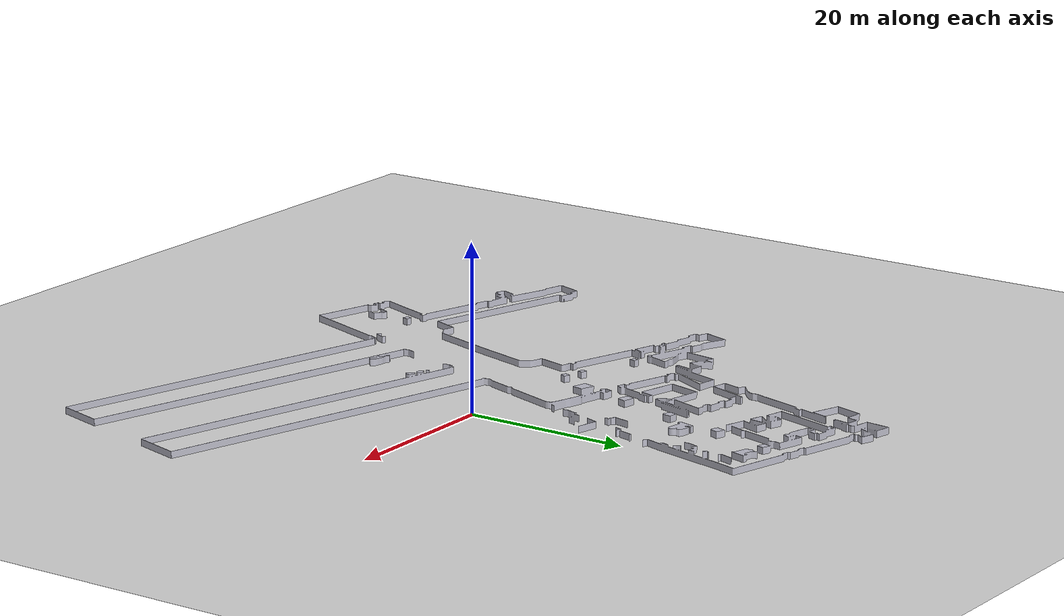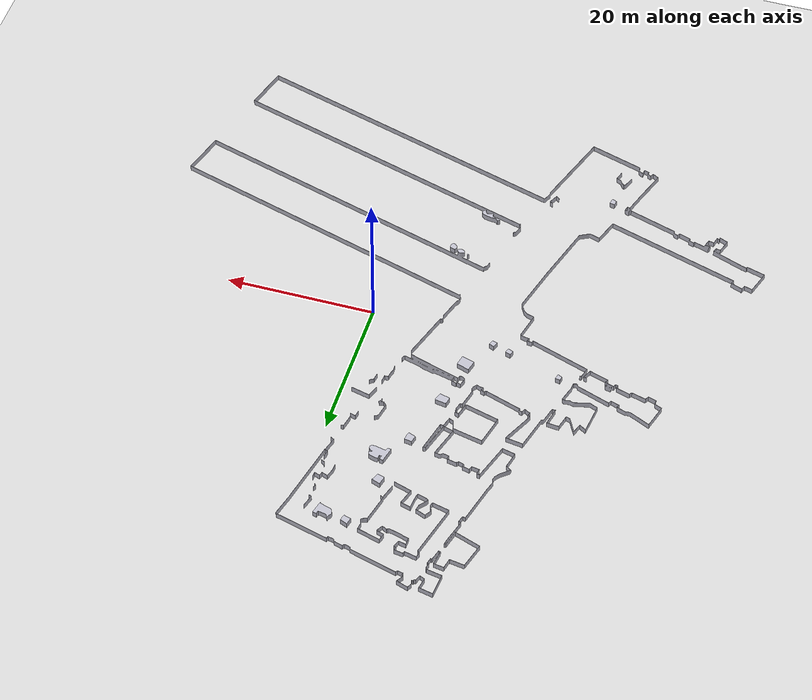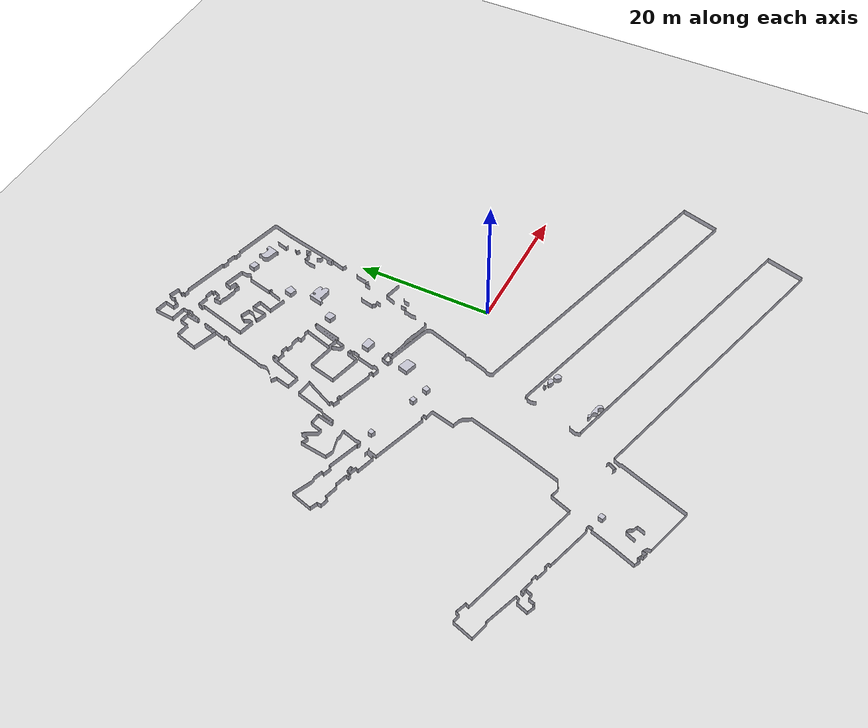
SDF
<?xml version="1.0" ?>
<sdf version="1.6">
  <world name="map_a2_world">
    <physics name="1ms" type="ignored">
      <max_step_size>0.001</max_step_size>
      <real_time_factor>1.0</real_time_factor>
    </physics>

    <!-- Gazebo Sim World Plugins -->
    <plugin filename="gz-sim-physics-system" name="gz::sim::systems::Physics"/>
    <plugin filename="gz-sim-user-commands-system" name="gz::sim::systems::UserCommands"/>
    <plugin filename="gz-sim-scene-broadcaster-system" name="gz::sim::systems::SceneBroadcaster"/>
    <plugin filename="gz-sim-sensors-system" name="gz::sim::systems::Sensors">
      <render_engine>ogre2</render_engine>
    </plugin>

    <gravity>0 0 -9.81</gravity>
    <magnetic_field>6e-06 2.3e-05 -4.2e-05</magnetic_field>

    <!-- Directional Light (Sun) -->
    <light type="directional" name="sun">
      <cast_shadows>true</cast_shadows>
      <pose>0 0 50 0 0 0</pose>
      <diffuse>0.9 0.9 0.9 1</diffuse>
      <specular>0.3 0.3 0.3 1</specular>
      <attenuation>
        <range>2000</range>
        <constant>0.9</constant>
        <linear>0.001</linear>
        <quadratic>0.0001</quadratic>
      </attenuation>
      <direction>-0.5 0.2 -0.9</direction>
    </light>

    <!-- Ground Plane -->
    <model name="ground_plane">
      <static>true</static>
      <link name="link">
        <collision name="collision">
          <geometry>
            <plane>
              <normal>0 0 1</normal>
              <size>500 500</size>
            </plane>
          </geometry>
          <surface>
            <friction>
              <ode>
                <mu>100</mu>
                <mu2>50</mu2>
              </ode>
            </friction>
          </surface>
        </collision>
        <visual name="visual">
          <geometry>
            <plane>
              <normal>0 0 1</normal>
              <size>500 500</size>
            </plane>
          </geometry>
          <material>
            <ambient>0.85 0.85 0.85 1</ambient>
            <diffuse>0.85 0.85 0.85 1</diffuse>
            <specular>0.2 0.2 0.2 1</specular>
          </material>
        </visual>
      </link>
    </model>

    <!-- STL Building Map (Centered so (0,0) is in open center hallway) -->
    <include>
      <uri>model://map_a2</uri>
      <name>map_a2_building</name>
      <pose>-61.00 -44.08 0 0 0 0</pose>
    </include>

  </world>
</sdf>

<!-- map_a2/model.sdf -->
<sdf version="1.6">
  <model name="map_a2">
    <static>true</static>
    <link name="link">
      <collision name="collision">
        <geometry>
          <mesh>
            <uri>model://map_a2/meshes/map.stl</uri>
            <scale>0.0004 0.0004 0.0004</scale>
          </mesh>
        </geometry>
        <surface>
          <friction>
            <ode>
              <mu>100</mu>
              <mu2>50</mu2>
            </ode>
          </friction>
          <contact>
            <collide_without_contact>false</collide_without_contact>
          </contact>
        </surface>
      </collision>
      <visual name="visual">
        <geometry>
          <mesh>
            <uri>model://map_a2/meshes/map.stl</uri>
            <scale>0.0004 0.0004 0.0004</scale>
          </mesh>
        </geometry>
        <material>
          <ambient>0.75 0.75 0.8 1.0</ambient>
          <diffuse>0.75 0.75 0.8 1.0</diffuse>
          <specular>0.2 0.2 0.2 1.0</specular>
        </material>
      </visual>
    </link>
  </model>
</sdf>
